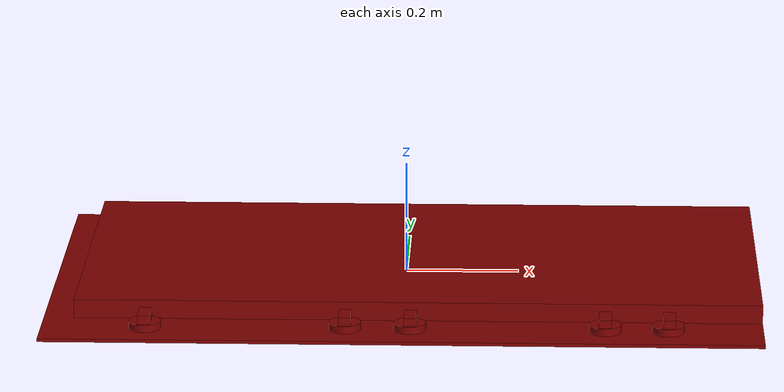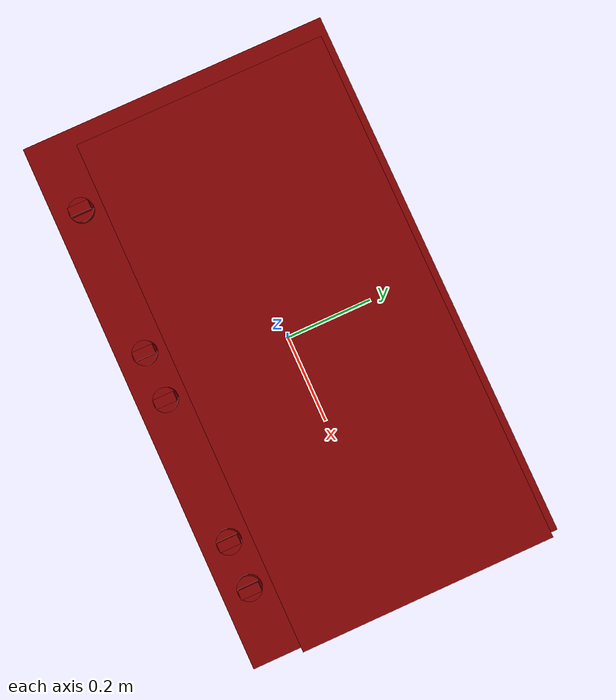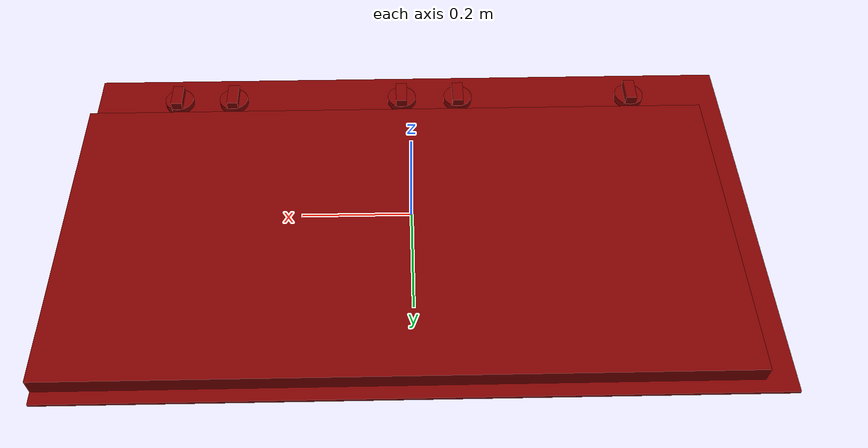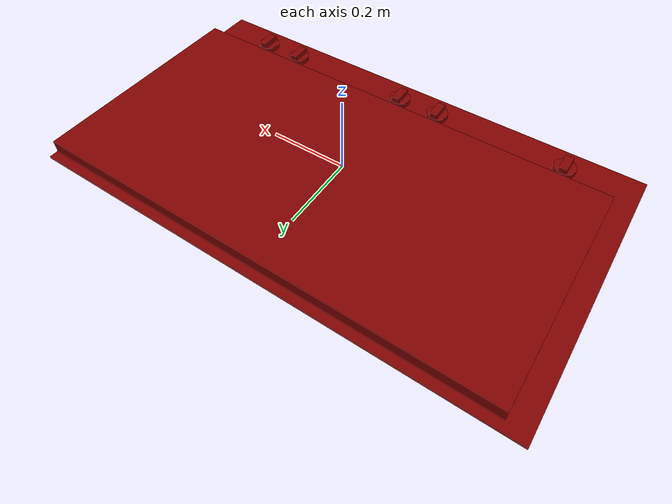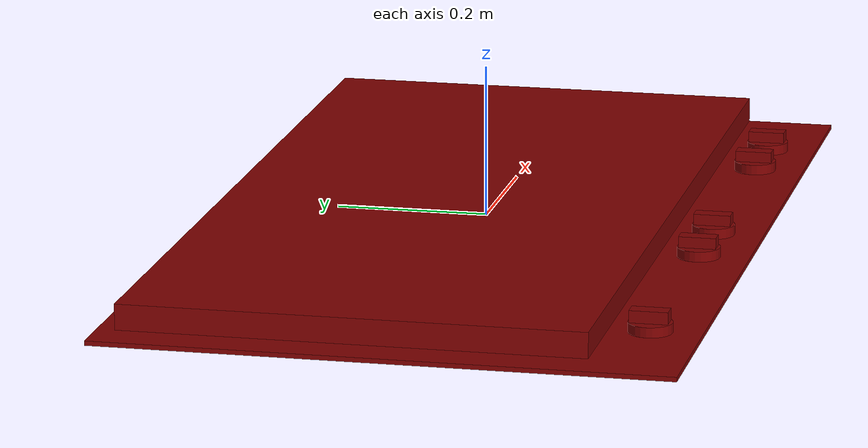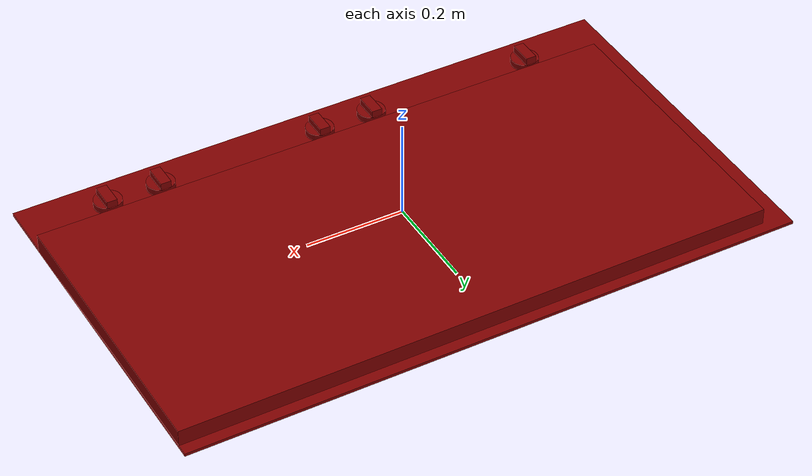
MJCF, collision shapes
<?xml version='1.0' encoding='UTF-8'?>
<mujoco model="model">
  <option timestep="0.002" gravity="0.0 0.0 -9.81"/>
  <compiler angle="radian"/>
  <asset>
    <mesh file="visuals/knob_front_center.obj" name="knob_front_center_vis"/>
    <mesh file="visuals/knob_front_left.obj" name="knob_front_left_vis"/>
    <mesh file="visuals/knob_front_right.obj" name="knob_front_right_vis"/>
    <mesh file="visuals/knob_rear_center.obj" name="knob_rear_center_vis"/>
    <mesh file="visuals/knob_rear_right.obj" name="knob_rear_right_vis"/>
    <mesh file="visuals/Body001.obj" name="Body001_vis"/>
    <mesh file="visuals/Body002.obj" name="Body002_vis"/>
    <texture file="visuals/T_BC001.png" name="Body001_material" type="2d"/>
    <material name="Body001_material" rgba="1 1 1 1.0" texture="Body001_material" shininess="0.4472135901451111" specular="0.3103448502657381"/>
    <texture file="visuals/T_BC001.png" name="knob_front_center_material" type="2d"/>
    <material name="knob_front_center_material" rgba="1 1 1 1.0" texture="knob_front_center_material" shininess="0.4472135901451111" specular="0.3103448502657381"/>
    <texture file="visuals/T_BC001.png" name="knob_front_left_material" type="2d"/>
    <material name="knob_front_left_material" rgba="1 1 1 1.0" texture="knob_front_left_material" shininess="0.4472135901451111" specular="0.3103448502657381"/>
    <texture file="visuals/T_BC001.png" name="knob_front_right_material" type="2d"/>
    <material name="knob_front_right_material" rgba="1 1 1 1.0" texture="knob_front_right_material" shininess="0.4472135901451111" specular="0.3103448502657381"/>
    <texture file="visuals/T_BC001.png" name="knob_rear_center_material" type="2d"/>
    <material name="knob_rear_center_material" rgba="1 1 1 1.0" texture="knob_rear_center_material" shininess="0.4472135901451111" specular="0.3103448502657381"/>
    <texture file="visuals/T_BC001.png" name="knob_rear_right_material" type="2d"/>
    <material name="knob_rear_right_material" rgba="1 1 1 1.0" texture="knob_rear_right_material" shininess="0.4472135901451111" specular="0.3103448502657381"/>
    <texture file="visuals/T_BC001.png" name="Body002_material" type="2d"/>
    <material name="Body002_material" rgba="1 1 1 1.0" texture="Body002_material" shininess="0.4472135901451111" specular="0.3103448502657381"/>
  </asset>
  <default>
    <default class="visual">
      <geom conaffinity="0" contype="0" group="1" type="mesh"/>
    </default>
    <default class="collision">
      <geom group="0" rgba="0.5 0 0 0.5"/>
    </default>
    <default class="spawn">
      <geom group="0" rgba="1 1 1 0.5" contype="0" conaffinity="0"/>
      <site group="0" rgba="1 1 1 0.5"/>
    </default>
    <default class="region">
      <geom group="1" conaffinity="0" contype="0" rgba="0 1 0 0"/>
    </default>
  </default>
  <worldbody>
    <body>
      <body name="object">
        <geom mesh="Body001_vis" type="mesh" solimp="0.998 0.998 0.001" solref="0.001 1" friction="0.95 0.3 0.1" class="visual" material="Body001_material"/>
        <geom class="collision" type="box" pos="0.02627725899219513 0.047017380595207214 -5.032029002904892e-05" size="0.6031211018562317 0.2956985533237457 0.019606241956353188" quat="1.0 0.0 0.0 0.0"/>
        <geom class="collision" type="box" pos="-4.936009645462036e-05 -0.000302046537399292 -0.016653597354888916" size="0.6294476985931396 0.3660358786582947 0.003002963727340102" quat="1.0 0.0 0.0 0.0"/>
        <body name="knob_front_center">
          <joint axis="0.0 0.0 1.0" pos="-0.09906890988349915 -0.3011915683746338 0.0005417391657829285" limited="true" name="knob_front_center_joint" range="0.0 3.141592653589793" type="hinge" damping="0.2" armature="0.01" frictionloss="1"/>
          <geom mesh="knob_front_center_vis" type="mesh" solimp="0.998 0.998 0.001" solref="0.001 1" friction="0.95 0.3 0.1" class="visual" material="knob_front_center_material"/>
          <geom class="collision" type="cylinder" pos="-0.0989890992641449 -0.3011915683746338 -0.005897894501686096" size="0.028106248006224632 0.006674402393400669" quat="1.0 0.0 0.0 0.0" friction="100 0.5 0.01"/>
          <geom class="collision" type="box" pos="-0.09871155768632889 -0.30037012696266174 0.004732273519039154" size="0.010732141323387623 0.02437160536646843 0.010414772666990757" quat="1.0 0.0 0.0 0.0" name="knob_front_center_main" friction="100 0.5 0.01"/>
        </body>
        <body name="knob_front_left">
          <joint axis="0.0 0.0 1.0" pos="-0.4476046860218048 -0.3011915683746338 0.0005417391657829285" limited="true" name="knob_front_left_joint" range="0.0 3.141592653589793" type="hinge" damping="0.2" armature="0.01" frictionloss="1"/>
          <geom mesh="knob_front_left_vis" type="mesh" solimp="0.998 0.998 0.001" solref="0.001 1" friction="0.95 0.3 0.1" class="visual" material="knob_front_left_material"/>
          <geom class="collision" type="cylinder" pos="-0.4476042091846466 -0.3011915683746338 -0.006911296397447586" size="0.028106248006224632 0.006459967233240604" quat="1.0 0.0 0.0 0.0" friction="100 0.5 0.01"/>
          <geom class="collision" type="box" pos="-0.4477069079875946 -0.30037012696266174 0.004732273519039154" size="0.010732141323387623 0.024371586740016937 0.010414772666990757" quat="1.0 0.0 0.0 0.0" name="knob_front_left_main" friction="100 0.5 0.01"/>
        </body>
        <body name="knob_front_right">
          <joint axis="0.0 0.0 1.0" pos="0.46504083275794983 -0.3011915683746338 0.0005417391657829285" limited="true" name="knob_front_right_joint" range="0.0 3.141592653589793" type="hinge" damping="0.2" armature="0.01" frictionloss="1"/>
          <geom mesh="knob_front_right_vis" type="mesh" solimp="0.998 0.998 0.001" solref="0.001 1" friction="0.95 0.3 0.1" class="visual" material="knob_front_right_material"/>
          <geom class="collision" type="cylinder" pos="0.46373966336250305 -0.3011915683746338 -0.005897894501686096" size="0.028106248006224632 0.006674402393400669" quat="1.0 0.0 0.0 0.0" friction="100 0.5 0.01"/>
          <geom class="collision" type="box" pos="0.4653381407260895 -0.30037012696266174 0.004732273519039154" size="0.010732141323387623 0.024371657520532608 0.010414772666990757" quat="1.0 0.0 0.0 0.0" name="knob_front_right_main" friction="100 0.5 0.01"/>
        </body>
        <body name="knob_rear_center">
          <joint axis="0.0 0.0 1.0" pos="0.014634836465120316 -0.3011915683746338 0.0005417391657829285" limited="true" name="knob_rear_center_joint" range="0.0 3.141592653589793" type="hinge" damping="0.2" armature="0.01" frictionloss="1"/>
          <geom mesh="knob_rear_center_vis" type="mesh" solimp="0.998 0.998 0.001" solref="0.001 1" friction="0.95 0.3 0.1" class="visual" material="knob_rear_center_material"/>
          <geom class="collision" type="cylinder" pos="0.014268621802330017 -0.3011915683746338 -0.005897894501686096" size="0.028106248006224632 0.006674402393400669" quat="1.0 0.0 0.0 0.0" friction="100 0.5 0.01"/>
          <geom class="collision" type="box" pos="0.014996767044067383 -0.30037012696266174 0.004732273519039154" size="0.010732141323387623 0.024371622130274773 0.010414772666990757" quat="1.0 0.0 0.0 0.0" name="knob_rear_center_main" friction="100 0.5 0.01"/>
        </body>
        <body name="knob_rear_right">
          <joint axis="0.0 0.0 1.0" pos="0.35357150435447693 -0.3011915683746338 0.0005417391657829285" limited="true" name="knob_rear_right_joint" range="0.0 3.141592653589793" type="hinge" damping="0.2" armature="0.01" frictionloss="1"/>
          <geom mesh="knob_rear_right_vis" type="mesh" solimp="0.998 0.998 0.001" solref="0.001 1" friction="0.95 0.3 0.1" class="visual" material="knob_rear_right_material"/>
          <geom class="collision" type="cylinder" pos="0.3542788326740265 -0.3011915683746338 -0.005897894501686096" size="0.028106248006224632 0.006674402393400669" quat="1.0 0.0 0.0 0.0" friction="100 0.5 0.01"/>
          <geom class="collision" type="box" pos="0.3540773093700409 -0.30037012696266174 0.004732273519039154" size="0.010732141323387623 0.024371638894081116 0.010414772666990757" quat="1.0 0.0 0.0 0.0" name="knob_rear_right_main" friction="100 0.5 0.01"/>
        </body>
        <body name="Body002">
          <geom mesh="Body002_vis" type="mesh" solimp="0.998 0.998 0.001" solref="0.001 1" friction="0.95 0.3 0.1" class="visual" material="Body002_material"/>
        </body>
        <site type="cylinder" rgba="0.3 0.4 1 0.5" size="0.07286597043275833 0.006681370083242655" pos="0.3976621925830841 0.18694806098937988 0.004577182233333588" name="burner_on_rear_right"/>
        <site type="cylinder" rgba="0.3 0.4 1 0.5" size="0.05037660896778107 0.0066813696175813675" pos="-0.04235649108886719 0.1877288818359375 0.004577182233333588" name="burner_on_rear_center"/>
        <site type="cylinder" rgba="0.3 0.4 1 0.5" size="0.09995614737272263 0.006681368686258793" pos="-0.4361141324043274 0.03471239283680916 0.004577185958623886" name="burner_on_front_left"/>
        <site type="cylinder" rgba="0.3 0.4 1 0.5" size="0.035985417664051056 0.0066813696175813675" pos="0.396560400724411 -0.08879248797893524 0.004577182233333588" name="burner_on_front_right"/>
        <site type="cylinder" rgba="0.3 0.4 1 0.5" size="0.05138256400823593 0.006681370083242655" pos="-0.042688287794589996 -0.0889759212732315 0.004577182233333588" name="burner_on_front_center"/>
        <site type="cylinder" rgba="0.5 0 0 0" size="0.05138256400823593 4.999999509891495e-05" pos="-0.042688287794589996 -0.0889759212732315 0.019564280286431313" name="burner_front_center_place_site"/>
        <site type="cylinder" rgba="0.5 0 0 0" size="0.09995614737272263 4.999999873689376e-05" pos="-0.4361141324043274 0.03471239283680916 0.01956428401172161" name="burner_front_left_place_site"/>
        <site type="cylinder" rgba="0.5 0 0 0" size="0.035985417664051056 4.999999873689376e-05" pos="0.396560400724411 -0.08879248797893524 0.019564280286431313" name="burner_front_right_place_site"/>
        <site type="cylinder" rgba="0.5 0 0 0" size="0.05037660896778107 4.999999873689376e-05" pos="-0.04235649108886719 0.1877288818359375 0.019564280286431313" name="burner_rear_center_place_site"/>
        <site type="cylinder" rgba="0.5 0 0 0" size="0.07286597043275833 4.999999873689376e-05" pos="0.3976621925830841 0.18694806098937988 0.019564280286431313" name="burner_rear_right_place_site"/>
        <geom class="region" name="reg_main" type="box" pos="0.0 0.0 -0.0167" size="0.6307484636306763 0.36740799045562744 0.0031"/>
      </body>
    </body>
  </worldbody>
  <actuator>
    <motor name="knob_front_center_joint_actuator" joint="knob_front_center_joint" gear="10"/>
    <motor name="knob_front_left_joint_actuator" joint="knob_front_left_joint" gear="10"/>
    <motor name="knob_front_right_joint_actuator" joint="knob_front_right_joint" gear="10"/>
    <motor name="knob_rear_center_joint_actuator" joint="knob_rear_center_joint" gear="10"/>
    <motor name="knob_rear_right_joint_actuator" joint="knob_rear_right_joint" gear="10"/>
  </actuator>
</mujoco>
